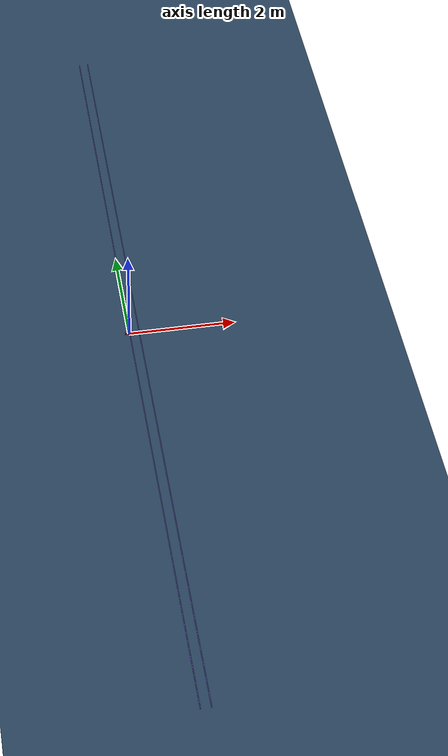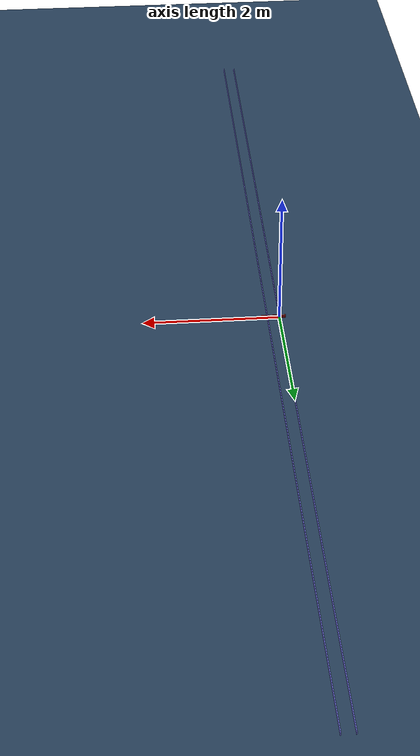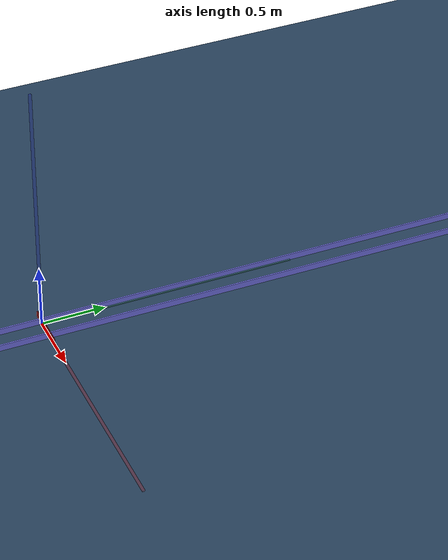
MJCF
<mujoco>
    <compiler angle="degree" coordinate="local" inertiafromgeom="true" />
    <option integrator="RK4"/>

    <asset>
        <texture type="skybox" builtin="gradient" rgb1="0.3 0.5 0.7" rgb2="0 0 0" width="512" height="3072"/>
        <texture type="2d" name="groundplane" builtin="checker" mark="edge" rgb1="0.2 0.3 0.4" rgb2="0.1 0.2 0.3" markrgb="0.8 0.8 0.8" width="300" height="300"/>
        <material name="groundplane" texture="groundplane" texuniform="true" texrepeat="5 5" reflectance="0.2"/>
    </asset>

    <worldbody>
        <geom type="plane" size="400 400 .01" material="groundplane" friction="0 0 0"/>
        <light pos="0 0 1.5" dir="0 0 -1" directional="true"/>

        <body name="back_wall" pos="0.09 0 0.025" >
            <geom type="box" size="0.18 0.005 0.025" rgba="0.4 0 0 1" />
        </body>
        <body name="right_wall" pos="0.18 0 0.025">
            <geom type="box" size="0.005 8 0.025" rgba=".5 .5 1 1" />
        </body>
        <body name="left_wall" pos="0.0 0 0.025">
            <geom type="box" size="0.005 8 0.025" rgba=".5 .5 1 1" />
        </body>

        <site type="box" rgba="1 0 0 0.1" fromto="0 0 0 2 0 0" size="0.01"/>
        <site type="box" rgba="0 1 0 0.1" fromto="0 0 0 0 2 0" size="0.01"/>
        <site type="box" rgba="0 0 1 0.1" fromto="0 0 0 0 0 2" size="0.01"/> 座標軸表示

    </worldbody>

</mujoco>
